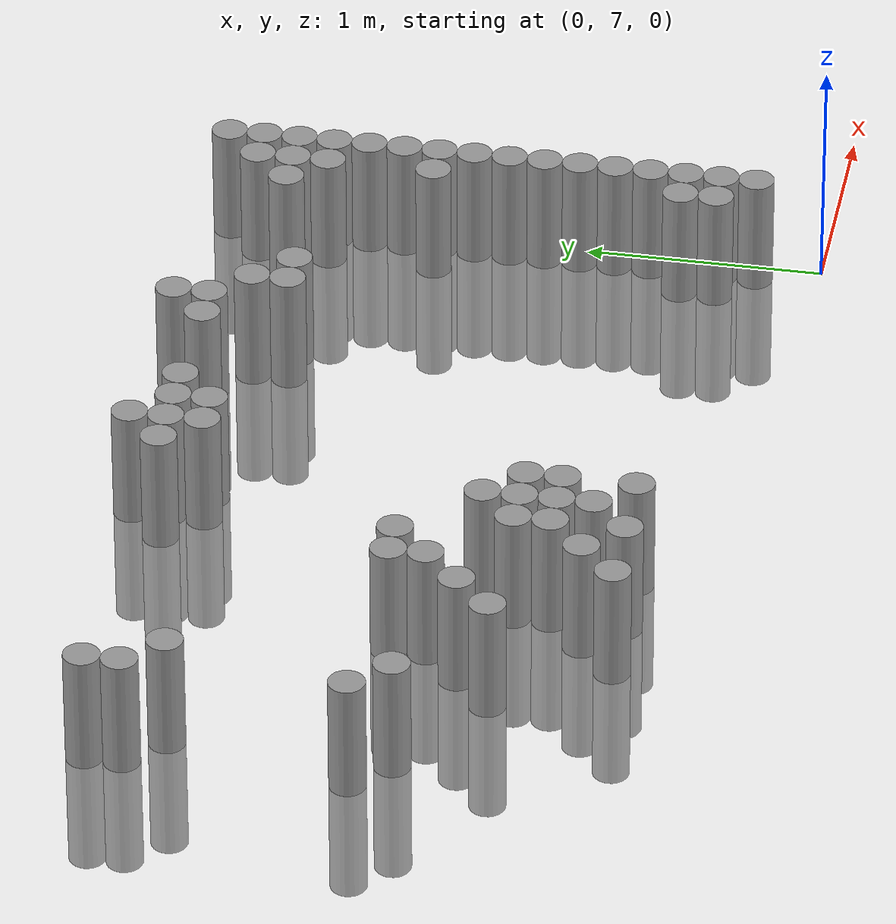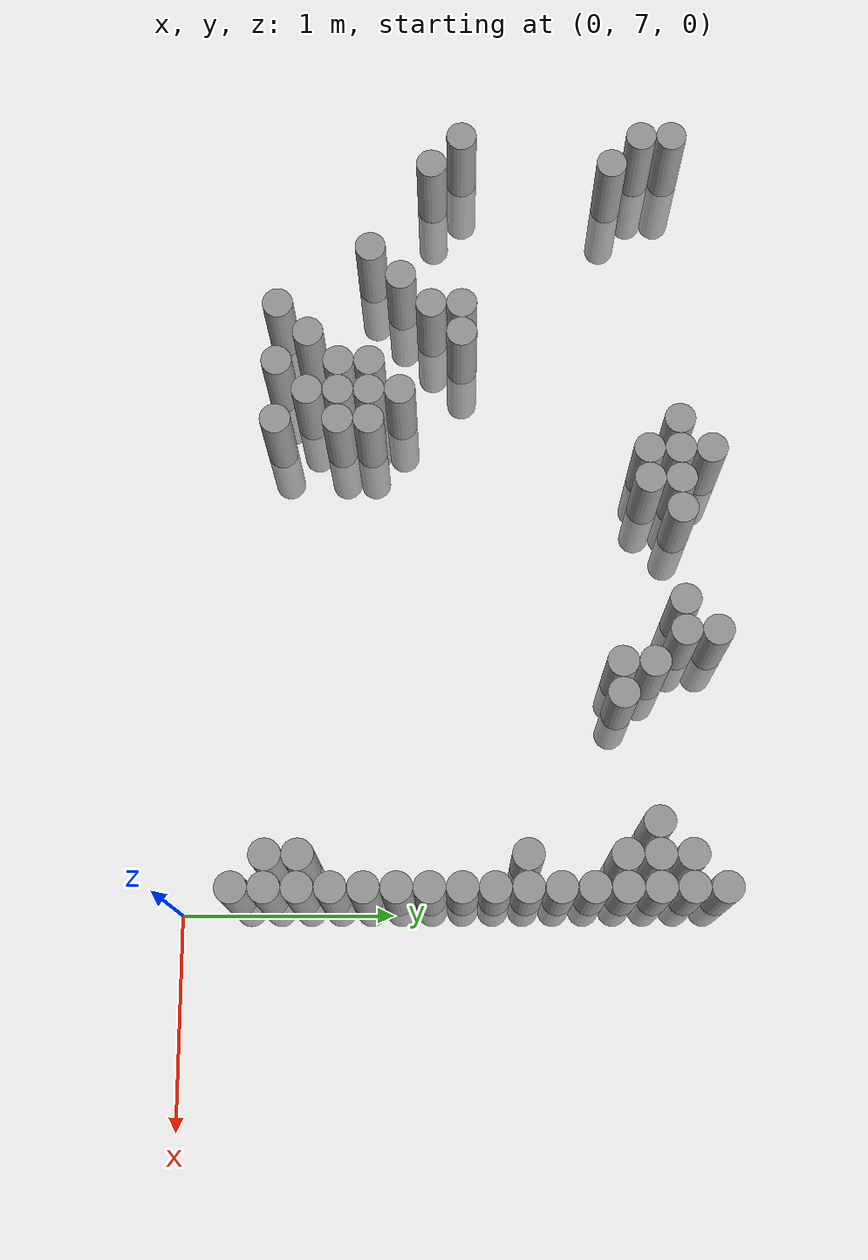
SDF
<sdf version="1.6">
 <world name="default">
  <model name="ground_plane">
   <static>1</static>
   <static>1</static>
   <link name="link">
    <collision name="collision">
     <geometry><plane><normal>0 0 1</normal><size>100 100</size></plane></geometry>
     <surface><friction><ode><mu>100</mu><mu2>50</mu2></ode></friction></surface>
    </collision>
    <visual name="visual">
     <cast_shadows>0</cast_shadows>
     <geometry><plane><normal>0 0 1</normal><size>100 100</size></plane></geometry>
     <material>
      <script><uri>file://media/materials/scripts/gazebo.material</uri><name>Gazebo/Grey</name></script>
     </material>
    </visual>
   </link>
  </model>
  <model name="unit_cylinder_160">
   <static>1</static>
   <pose>-3.825000 8.325000 0.000000 0.000000 0.000000 0.000000</pose>
   <link name="link">
    <inertial>
     <mass>1</mass>
     <inertia><ixx>0.145833</ixx><ixy>0</ixy><ixz>0</ixz><iyy>0.145833</iyy><iyz>0</iyz><izz>0.125</izz></inertia>
    </inertial>
    <collision name="collision">
     <geometry><cylinder><radius>0.075000</radius><length>1</length></cylinder></geometry>
    </collision>
    <visual name="visual">
     <geometry><cylinder><radius>0.075000</radius><length>1</length></cylinder></geometry>
     <material>
      <script><name>Gazebo/Grey</name><uri>file://media/materials/scripts/gazebo.material</uri></script>
     </material>
    </visual>
   </link>
  </model>
  <model name="unit_cylinder_161">
   <static>1</static>
   <pose>-3.825000 9.225000 0.000000 0.000000 0.000000 0.000000</pose>
   <link name="link">
    <inertial>
     <mass>1</mass>
     <inertia><ixx>0.145833</ixx><ixy>0</ixy><ixz>0</ixz><iyy>0.145833</iyy><iyz>0</iyz><izz>0.125</izz></inertia>
    </inertial>
    <collision name="collision">
     <geometry><cylinder><radius>0.075000</radius><length>1</length></cylinder></geometry>
    </collision>
    <visual name="visual">
     <geometry><cylinder><radius>0.075000</radius><length>1</length></cylinder></geometry>
     <material>
      <script><name>Gazebo/Grey</name><uri>file://media/materials/scripts/gazebo.material</uri></script>
     </material>
    </visual>
   </link>
  </model>
  <model name="unit_cylinder_162">
   <static>1</static>
   <pose>-3.825000 9.375000 0.000000 0.000000 0.000000 0.000000</pose>
   <link name="link">
    <inertial>
     <mass>1</mass>
     <inertia><ixx>0.145833</ixx><ixy>0</ixy><ixz>0</ixz><iyy>0.145833</iyy><iyz>0</iyz><izz>0.125</izz></inertia>
    </inertial>
    <collision name="collision">
     <geometry><cylinder><radius>0.075000</radius><length>1</length></cylinder></geometry>
    </collision>
    <visual name="visual">
     <geometry><cylinder><radius>0.075000</radius><length>1</length></cylinder></geometry>
     <material>
      <script><name>Gazebo/Grey</name><uri>file://media/materials/scripts/gazebo.material</uri></script>
     </material>
    </visual>
   </link>
  </model>
  <model name="unit_cylinder_164">
   <static>1</static>
   <pose>-3.675000 8.175000 0.000000 0.000000 0.000000 0.000000</pose>
   <link name="link">
    <inertial>
     <mass>1</mass>
     <inertia><ixx>0.145833</ixx><ixy>0</ixy><ixz>0</ixz><iyy>0.145833</iyy><iyz>0</iyz><izz>0.125</izz></inertia>
    </inertial>
    <collision name="collision">
     <geometry><cylinder><radius>0.075000</radius><length>1</length></cylinder></geometry>
    </collision>
    <visual name="visual">
     <geometry><cylinder><radius>0.075000</radius><length>1</length></cylinder></geometry>
     <material>
      <script><name>Gazebo/Grey</name><uri>file://media/materials/scripts/gazebo.material</uri></script>
     </material>
    </visual>
   </link>
  </model>
  <model name="unit_cylinder_165">
   <static>1</static>
   <pose>-3.675000 9.075000 0.000000 0.000000 0.000000 0.000000</pose>
   <link name="link">
    <inertial>
     <mass>1</mass>
     <inertia><ixx>0.145833</ixx><ixy>0</ixy><ixz>0</ixz><iyy>0.145833</iyy><iyz>0</iyz><izz>0.125</izz></inertia>
    </inertial>
    <collision name="collision">
     <geometry><cylinder><radius>0.075000</radius><length>1</length></cylinder></geometry>
    </collision>
    <visual name="visual">
     <geometry><cylinder><radius>0.075000</radius><length>1</length></cylinder></geometry>
     <material>
      <script><name>Gazebo/Grey</name><uri>file://media/materials/scripts/gazebo.material</uri></script>
     </material>
    </visual>
   </link>
  </model>
  <model name="unit_cylinder_174">
   <static>1</static>
   <pose>-3.225000 7.875000 0.000000 0.000000 0.000000 0.000000</pose>
   <link name="link">
    <inertial>
     <mass>1</mass>
     <inertia><ixx>0.145833</ixx><ixy>0</ixy><ixz>0</ixz><iyy>0.145833</iyy><iyz>0</iyz><izz>0.125</izz></inertia>
    </inertial>
    <collision name="collision">
     <geometry><cylinder><radius>0.075000</radius><length>1</length></cylinder></geometry>
    </collision>
    <visual name="visual">
     <geometry><cylinder><radius>0.075000</radius><length>1</length></cylinder></geometry>
     <material>
      <script><name>Gazebo/Grey</name><uri>file://media/materials/scripts/gazebo.material</uri></script>
     </material>
    </visual>
   </link>
  </model>
  <model name="unit_cylinder_180">
   <static>1</static>
   <pose>-3.075000 8.025000 0.000000 0.000000 0.000000 0.000000</pose>
   <link name="link">
    <inertial>
     <mass>1</mass>
     <inertia><ixx>0.145833</ixx><ixy>0</ixy><ixz>0</ixz><iyy>0.145833</iyy><iyz>0</iyz><izz>0.125</izz></inertia>
    </inertial>
    <collision name="collision">
     <geometry><cylinder><radius>0.075000</radius><length>1</length></cylinder></geometry>
    </collision>
    <visual name="visual">
     <geometry><cylinder><radius>0.075000</radius><length>1</length></cylinder></geometry>
     <material>
      <script><name>Gazebo/Grey</name><uri>file://media/materials/scripts/gazebo.material</uri></script>
     </material>
    </visual>
   </link>
  </model>
  <model name="unit_cylinder_183">
   <static>1</static>
   <pose>-2.925000 7.425000 0.000000 0.000000 0.000000 0.000000</pose>
   <link name="link">
    <inertial>
     <mass>1</mass>
     <inertia><ixx>0.145833</ixx><ixy>0</ixy><ixz>0</ixz><iyy>0.145833</iyy><iyz>0</iyz><izz>0.125</izz></inertia>
    </inertial>
    <collision name="collision">
     <geometry><cylinder><radius>0.075000</radius><length>1</length></cylinder></geometry>
    </collision>
    <visual name="visual">
     <geometry><cylinder><radius>0.075000</radius><length>1</length></cylinder></geometry>
     <material>
      <script><name>Gazebo/Grey</name><uri>file://media/materials/scripts/gazebo.material</uri></script>
     </material>
    </visual>
   </link>
  </model>
  <model name="unit_cylinder_184">
   <static>1</static>
   <pose>-2.925000 8.175000 0.000000 0.000000 0.000000 0.000000</pose>
   <link name="link">
    <inertial>
     <mass>1</mass>
     <inertia><ixx>0.145833</ixx><ixy>0</ixy><ixz>0</ixz><iyy>0.145833</iyy><iyz>0</iyz><izz>0.125</izz></inertia>
    </inertial>
    <collision name="collision">
     <geometry><cylinder><radius>0.075000</radius><length>1</length></cylinder></geometry>
    </collision>
    <visual name="visual">
     <geometry><cylinder><radius>0.075000</radius><length>1</length></cylinder></geometry>
     <material>
      <script><name>Gazebo/Grey</name><uri>file://media/materials/scripts/gazebo.material</uri></script>
     </material>
    </visual>
   </link>
  </model>
  <model name="unit_cylinder_185">
   <static>1</static>
   <pose>-2.925000 8.325000 0.000000 0.000000 0.000000 0.000000</pose>
   <link name="link">
    <inertial>
     <mass>1</mass>
     <inertia><ixx>0.145833</ixx><ixy>0</ixy><ixz>0</ixz><iyy>0.145833</iyy><iyz>0</iyz><izz>0.125</izz></inertia>
    </inertial>
    <collision name="collision">
     <geometry><cylinder><radius>0.075000</radius><length>1</length></cylinder></geometry>
    </collision>
    <visual name="visual">
     <geometry><cylinder><radius>0.075000</radius><length>1</length></cylinder></geometry>
     <material>
      <script><name>Gazebo/Grey</name><uri>file://media/materials/scripts/gazebo.material</uri></script>
     </material>
    </visual>
   </link>
  </model>
  <model name="unit_cylinder_188">
   <static>1</static>
   <pose>-2.775000 7.575000 0.000000 0.000000 0.000000 0.000000</pose>
   <link name="link">
    <inertial>
     <mass>1</mass>
     <inertia><ixx>0.145833</ixx><ixy>0</ixy><ixz>0</ixz><iyy>0.145833</iyy><iyz>0</iyz><izz>0.125</izz></inertia>
    </inertial>
    <collision name="collision">
     <geometry><cylinder><radius>0.075000</radius><length>1</length></cylinder></geometry>
    </collision>
    <visual name="visual">
     <geometry><cylinder><radius>0.075000</radius><length>1</length></cylinder></geometry>
     <material>
      <script><name>Gazebo/Grey</name><uri>file://media/materials/scripts/gazebo.material</uri></script>
     </material>
    </visual>
   </link>
  </model>
  <model name="unit_cylinder_189">
   <static>1</static>
   <pose>-2.775000 8.325000 0.000000 0.000000 0.000000 0.000000</pose>
   <link name="link">
    <inertial>
     <mass>1</mass>
     <inertia><ixx>0.145833</ixx><ixy>0</ixy><ixz>0</ixz><iyy>0.145833</iyy><iyz>0</iyz><izz>0.125</izz></inertia>
    </inertial>
    <collision name="collision">
     <geometry><cylinder><radius>0.075000</radius><length>1</length></cylinder></geometry>
    </collision>
    <visual name="visual">
     <geometry><cylinder><radius>0.075000</radius><length>1</length></cylinder></geometry>
     <material>
      <script><name>Gazebo/Grey</name><uri>file://media/materials/scripts/gazebo.material</uri></script>
     </material>
    </visual>
   </link>
  </model>
  <model name="unit_cylinder_193">
   <static>1</static>
   <pose>-2.625000 7.425000 0.000000 0.000000 0.000000 0.000000</pose>
   <link name="link">
    <inertial>
     <mass>1</mass>
     <inertia><ixx>0.145833</ixx><ixy>0</ixy><ixz>0</ixz><iyy>0.145833</iyy><iyz>0</iyz><izz>0.125</izz></inertia>
    </inertial>
    <collision name="collision">
     <geometry><cylinder><radius>0.075000</radius><length>1</length></cylinder></geometry>
    </collision>
    <visual name="visual">
     <geometry><cylinder><radius>0.075000</radius><length>1</length></cylinder></geometry>
     <material>
      <script><name>Gazebo/Grey</name><uri>file://media/materials/scripts/gazebo.material</uri></script>
     </material>
    </visual>
   </link>
  </model>
  <model name="unit_cylinder_194">
   <static>1</static>
   <pose>-2.625000 7.725000 0.000000 0.000000 0.000000 0.000000</pose>
   <link name="link">
    <inertial>
     <mass>1</mass>
     <inertia><ixx>0.145833</ixx><ixy>0</ixy><ixz>0</ixz><iyy>0.145833</iyy><iyz>0</iyz><izz>0.125</izz></inertia>
    </inertial>
    <collision name="collision">
     <geometry><cylinder><radius>0.075000</radius><length>1</length></cylinder></geometry>
    </collision>
    <visual name="visual">
     <geometry><cylinder><radius>0.075000</radius><length>1</length></cylinder></geometry>
     <material>
      <script><name>Gazebo/Grey</name><uri>file://media/materials/scripts/gazebo.material</uri></script>
     </material>
    </visual>
   </link>
  </model>
  <model name="unit_cylinder_195">
   <static>1</static>
   <pose>-2.625000 7.875000 0.000000 0.000000 0.000000 0.000000</pose>
   <link name="link">
    <inertial>
     <mass>1</mass>
     <inertia><ixx>0.145833</ixx><ixy>0</ixy><ixz>0</ixz><iyy>0.145833</iyy><iyz>0</iyz><izz>0.125</izz></inertia>
    </inertial>
    <collision name="collision">
     <geometry><cylinder><radius>0.075000</radius><length>1</length></cylinder></geometry>
    </collision>
    <visual name="visual">
     <geometry><cylinder><radius>0.075000</radius><length>1</length></cylinder></geometry>
     <material>
      <script><name>Gazebo/Grey</name><uri>file://media/materials/scripts/gazebo.material</uri></script>
     </material>
    </visual>
   </link>
  </model>
  <model name="unit_cylinder_200">
   <static>1</static>
   <pose>-2.475000 7.575000 0.000000 0.000000 0.000000 0.000000</pose>
   <link name="link">
    <inertial>
     <mass>1</mass>
     <inertia><ixx>0.145833</ixx><ixy>0</ixy><ixz>0</ixz><iyy>0.145833</iyy><iyz>0</iyz><izz>0.125</izz></inertia>
    </inertial>
    <collision name="collision">
     <geometry><cylinder><radius>0.075000</radius><length>1</length></cylinder></geometry>
    </collision>
    <visual name="visual">
     <geometry><cylinder><radius>0.075000</radius><length>1</length></cylinder></geometry>
     <material>
      <script><name>Gazebo/Grey</name><uri>file://media/materials/scripts/gazebo.material</uri></script>
     </material>
    </visual>
   </link>
  </model>
  <model name="unit_cylinder_201">
   <static>1</static>
   <pose>-2.475000 7.725000 0.000000 0.000000 0.000000 0.000000</pose>
   <link name="link">
    <inertial>
     <mass>1</mass>
     <inertia><ixx>0.145833</ixx><ixy>0</ixy><ixz>0</ixz><iyy>0.145833</iyy><iyz>0</iyz><izz>0.125</izz></inertia>
    </inertial>
    <collision name="collision">
     <geometry><cylinder><radius>0.075000</radius><length>1</length></cylinder></geometry>
    </collision>
    <visual name="visual">
     <geometry><cylinder><radius>0.075000</radius><length>1</length></cylinder></geometry>
     <material>
      <script><name>Gazebo/Grey</name><uri>file://media/materials/scripts/gazebo.material</uri></script>
     </material>
    </visual>
   </link>
  </model>
  <model name="unit_cylinder_202">
   <static>1</static>
   <pose>-2.475000 7.875000 0.000000 0.000000 0.000000 0.000000</pose>
   <link name="link">
    <inertial>
     <mass>1</mass>
     <inertia><ixx>0.145833</ixx><ixy>0</ixy><ixz>0</ixz><iyy>0.145833</iyy><iyz>0</iyz><izz>0.125</izz></inertia>
    </inertial>
    <collision name="collision">
     <geometry><cylinder><radius>0.075000</radius><length>1</length></cylinder></geometry>
    </collision>
    <visual name="visual">
     <geometry><cylinder><radius>0.075000</radius><length>1</length></cylinder></geometry>
     <material>
      <script><name>Gazebo/Grey</name><uri>file://media/materials/scripts/gazebo.material</uri></script>
     </material>
    </visual>
   </link>
  </model>
  <model name="unit_cylinder_203">
   <static>1</static>
   <pose>-2.475000 8.025000 0.000000 0.000000 0.000000 0.000000</pose>
   <link name="link">
    <inertial>
     <mass>1</mass>
     <inertia><ixx>0.145833</ixx><ixy>0</ixy><ixz>0</ixz><iyy>0.145833</iyy><iyz>0</iyz><izz>0.125</izz></inertia>
    </inertial>
    <collision name="collision">
     <geometry><cylinder><radius>0.075000</radius><length>1</length></cylinder></geometry>
    </collision>
    <visual name="visual">
     <geometry><cylinder><radius>0.075000</radius><length>1</length></cylinder></geometry>
     <material>
      <script><name>Gazebo/Grey</name><uri>file://media/materials/scripts/gazebo.material</uri></script>
     </material>
    </visual>
   </link>
  </model>
  <model name="unit_cylinder_208">
   <static>1</static>
   <pose>-2.325000 7.425000 0.000000 0.000000 0.000000 0.000000</pose>
   <link name="link">
    <inertial>
     <mass>1</mass>
     <inertia><ixx>0.145833</ixx><ixy>0</ixy><ixz>0</ixz><iyy>0.145833</iyy><iyz>0</iyz><izz>0.125</izz></inertia>
    </inertial>
    <collision name="collision">
     <geometry><cylinder><radius>0.075000</radius><length>1</length></cylinder></geometry>
    </collision>
    <visual name="visual">
     <geometry><cylinder><radius>0.075000</radius><length>1</length></cylinder></geometry>
     <material>
      <script><name>Gazebo/Grey</name><uri>file://media/materials/scripts/gazebo.material</uri></script>
     </material>
    </visual>
   </link>
  </model>
  <model name="unit_cylinder_209">
   <static>1</static>
   <pose>-2.325000 7.725000 0.000000 0.000000 0.000000 0.000000</pose>
   <link name="link">
    <inertial>
     <mass>1</mass>
     <inertia><ixx>0.145833</ixx><ixy>0</ixy><ixz>0</ixz><iyy>0.145833</iyy><iyz>0</iyz><izz>0.125</izz></inertia>
    </inertial>
    <collision name="collision">
     <geometry><cylinder><radius>0.075000</radius><length>1</length></cylinder></geometry>
    </collision>
    <visual name="visual">
     <geometry><cylinder><radius>0.075000</radius><length>1</length></cylinder></geometry>
     <material>
      <script><name>Gazebo/Grey</name><uri>file://media/materials/scripts/gazebo.material</uri></script>
     </material>
    </visual>
   </link>
  </model>
  <model name="unit_cylinder_210">
   <static>1</static>
   <pose>-2.325000 7.875000 0.000000 0.000000 0.000000 0.000000</pose>
   <link name="link">
    <inertial>
     <mass>1</mass>
     <inertia><ixx>0.145833</ixx><ixy>0</ixy><ixz>0</ixz><iyy>0.145833</iyy><iyz>0</iyz><izz>0.125</izz></inertia>
    </inertial>
    <collision name="collision">
     <geometry><cylinder><radius>0.075000</radius><length>1</length></cylinder></geometry>
    </collision>
    <visual name="visual">
     <geometry><cylinder><radius>0.075000</radius><length>1</length></cylinder></geometry>
     <material>
      <script><name>Gazebo/Grey</name><uri>file://media/materials/scripts/gazebo.material</uri></script>
     </material>
    </visual>
   </link>
  </model>
  <model name="unit_cylinder_211">
   <static>1</static>
   <pose>-2.325000 9.375000 0.000000 0.000000 0.000000 0.000000</pose>
   <link name="link">
    <inertial>
     <mass>1</mass>
     <inertia><ixx>0.145833</ixx><ixy>0</ixy><ixz>0</ixz><iyy>0.145833</iyy><iyz>0</iyz><izz>0.125</izz></inertia>
    </inertial>
    <collision name="collision">
     <geometry><cylinder><radius>0.075000</radius><length>1</length></cylinder></geometry>
    </collision>
    <visual name="visual">
     <geometry><cylinder><radius>0.075000</radius><length>1</length></cylinder></geometry>
     <material>
      <script><name>Gazebo/Grey</name><uri>file://media/materials/scripts/gazebo.material</uri></script>
     </material>
    </visual>
   </link>
  </model>
  <model name="unit_cylinder_212">
   <static>1</static>
   <pose>-2.175000 9.225000 0.000000 0.000000 0.000000 0.000000</pose>
   <link name="link">
    <inertial>
     <mass>1</mass>
     <inertia><ixx>0.145833</ixx><ixy>0</ixy><ixz>0</ixz><iyy>0.145833</iyy><iyz>0</iyz><izz>0.125</izz></inertia>
    </inertial>
    <collision name="collision">
     <geometry><cylinder><radius>0.075000</radius><length>1</length></cylinder></geometry>
    </collision>
    <visual name="visual">
     <geometry><cylinder><radius>0.075000</radius><length>1</length></cylinder></geometry>
     <material>
      <script><name>Gazebo/Grey</name><uri>file://media/materials/scripts/gazebo.material</uri></script>
     </material>
    </visual>
   </link>
  </model>
  <model name="unit_cylinder_213">
   <static>1</static>
   <pose>-2.175000 9.375000 0.000000 0.000000 0.000000 0.000000</pose>
   <link name="link">
    <inertial>
     <mass>1</mass>
     <inertia><ixx>0.145833</ixx><ixy>0</ixy><ixz>0</ixz><iyy>0.145833</iyy><iyz>0</iyz><izz>0.125</izz></inertia>
    </inertial>
    <collision name="collision">
     <geometry><cylinder><radius>0.075000</radius><length>1</length></cylinder></geometry>
    </collision>
    <visual name="visual">
     <geometry><cylinder><radius>0.075000</radius><length>1</length></cylinder></geometry>
     <material>
      <script><name>Gazebo/Grey</name><uri>file://media/materials/scripts/gazebo.material</uri></script>
     </material>
    </visual>
   </link>
  </model>
  <model name="unit_cylinder_214">
   <static>1</static>
   <pose>-2.175000 9.525000 0.000000 0.000000 0.000000 0.000000</pose>
   <link name="link">
    <inertial>
     <mass>1</mass>
     <inertia><ixx>0.145833</ixx><ixy>0</ixy><ixz>0</ixz><iyy>0.145833</iyy><iyz>0</iyz><izz>0.125</izz></inertia>
    </inertial>
    <collision name="collision">
     <geometry><cylinder><radius>0.075000</radius><length>1</length></cylinder></geometry>
    </collision>
    <visual name="visual">
     <geometry><cylinder><radius>0.075000</radius><length>1</length></cylinder></geometry>
     <material>
      <script><name>Gazebo/Grey</name><uri>file://media/materials/scripts/gazebo.material</uri></script>
     </material>
    </visual>
   </link>
  </model>
  <model name="unit_cylinder_215">
   <static>1</static>
   <pose>-2.025000 9.225000 0.000000 0.000000 0.000000 0.000000</pose>
   <link name="link">
    <inertial>
     <mass>1</mass>
     <inertia><ixx>0.145833</ixx><ixy>0</ixy><ixz>0</ixz><iyy>0.145833</iyy><iyz>0</iyz><izz>0.125</izz></inertia>
    </inertial>
    <collision name="collision">
     <geometry><cylinder><radius>0.075000</radius><length>1</length></cylinder></geometry>
    </collision>
    <visual name="visual">
     <geometry><cylinder><radius>0.075000</radius><length>1</length></cylinder></geometry>
     <material>
      <script><name>Gazebo/Grey</name><uri>file://media/materials/scripts/gazebo.material</uri></script>
     </material>
    </visual>
   </link>
  </model>
  <model name="unit_cylinder_216">
   <static>1</static>
   <pose>-2.025000 9.375000 0.000000 0.000000 0.000000 0.000000</pose>
   <link name="link">
    <inertial>
     <mass>1</mass>
     <inertia><ixx>0.145833</ixx><ixy>0</ixy><ixz>0</ixz><iyy>0.145833</iyy><iyz>0</iyz><izz>0.125</izz></inertia>
    </inertial>
    <collision name="collision">
     <geometry><cylinder><radius>0.075000</radius><length>1</length></cylinder></geometry>
    </collision>
    <visual name="visual">
     <geometry><cylinder><radius>0.075000</radius><length>1</length></cylinder></geometry>
     <material>
      <script><name>Gazebo/Grey</name><uri>file://media/materials/scripts/gazebo.material</uri></script>
     </material>
    </visual>
   </link>
  </model>
  <model name="unit_cylinder_217">
   <static>1</static>
   <pose>-1.875000 9.375000 0.000000 0.000000 0.000000 0.000000</pose>
   <link name="link">
    <inertial>
     <mass>1</mass>
     <inertia><ixx>0.145833</ixx><ixy>0</ixy><ixz>0</ixz><iyy>0.145833</iyy><iyz>0</iyz><izz>0.125</izz></inertia>
    </inertial>
    <collision name="collision">
     <geometry><cylinder><radius>0.075000</radius><length>1</length></cylinder></geometry>
    </collision>
    <visual name="visual">
     <geometry><cylinder><radius>0.075000</radius><length>1</length></cylinder></geometry>
     <material>
      <script><name>Gazebo/Grey</name><uri>file://media/materials/scripts/gazebo.material</uri></script>
     </material>
    </visual>
   </link>
  </model>
  <model name="unit_cylinder_218">
   <static>1</static>
   <pose>-1.425000 9.375000 0.000000 0.000000 0.000000 0.000000</pose>
   <link name="link">
    <inertial>
     <mass>1</mass>
     <inertia><ixx>0.145833</ixx><ixy>0</ixy><ixz>0</ixz><iyy>0.145833</iyy><iyz>0</iyz><izz>0.125</izz></inertia>
    </inertial>
    <collision name="collision">
     <geometry><cylinder><radius>0.075000</radius><length>1</length></cylinder></geometry>
    </collision>
    <visual name="visual">
     <geometry><cylinder><radius>0.075000</radius><length>1</length></cylinder></geometry>
     <material>
      <script><name>Gazebo/Grey</name><uri>file://media/materials/scripts/gazebo.material</uri></script>
     </material>
    </visual>
   </link>
  </model>
  <model name="unit_cylinder_219">
   <static>1</static>
   <pose>-1.275000 9.375000 0.000000 0.000000 0.000000 0.000000</pose>
   <link name="link">
    <inertial>
     <mass>1</mass>
     <inertia><ixx>0.145833</ixx><ixy>0</ixy><ixz>0</ixz><iyy>0.145833</iyy><iyz>0</iyz><izz>0.125</izz></inertia>
    </inertial>
    <collision name="collision">
     <geometry><cylinder><radius>0.075000</radius><length>1</length></cylinder></geometry>
    </collision>
    <visual name="visual">
     <geometry><cylinder><radius>0.075000</radius><length>1</length></cylinder></geometry>
     <material>
      <script><name>Gazebo/Grey</name><uri>file://media/materials/scripts/gazebo.material</uri></script>
     </material>
    </visual>
   </link>
  </model>
  <model name="unit_cylinder_220">
   <static>1</static>
   <pose>-1.275000 9.525000 0.000000 0.000000 0.000000 0.000000</pose>
   <link name="link">
    <inertial>
     <mass>1</mass>
     <inertia><ixx>0.145833</ixx><ixy>0</ixy><ixz>0</ixz><iyy>0.145833</iyy><iyz>0</iyz><izz>0.125</izz></inertia>
    </inertial>
    <collision name="collision">
     <geometry><cylinder><radius>0.075000</radius><length>1</length></cylinder></geometry>
    </collision>
    <visual name="visual">
     <geometry><cylinder><radius>0.075000</radius><length>1</length></cylinder></geometry>
     <material>
      <script><name>Gazebo/Grey</name><uri>file://media/materials/scripts/gazebo.material</uri></script>
     </material>
    </visual>
   </link>
  </model>
  <model name="unit_cylinder_221">
   <static>1</static>
   <pose>-1.125000 9.075000 0.000000 0.000000 0.000000 0.000000</pose>
   <link name="link">
    <inertial>
     <mass>1</mass>
     <inertia><ixx>0.145833</ixx><ixy>0</ixy><ixz>0</ixz><iyy>0.145833</iyy><iyz>0</iyz><izz>0.125</izz></inertia>
    </inertial>
    <collision name="collision">
     <geometry><cylinder><radius>0.075000</radius><length>1</length></cylinder></geometry>
    </collision>
    <visual name="visual">
     <geometry><cylinder><radius>0.075000</radius><length>1</length></cylinder></geometry>
     <material>
      <script><name>Gazebo/Grey</name><uri>file://media/materials/scripts/gazebo.material</uri></script>
     </material>
    </visual>
   </link>
  </model>
  <model name="unit_cylinder_222">
   <static>1</static>
   <pose>-1.125000 9.225000 0.000000 0.000000 0.000000 0.000000</pose>
   <link name="link">
    <inertial>
     <mass>1</mass>
     <inertia><ixx>0.145833</ixx><ixy>0</ixy><ixz>0</ixz><iyy>0.145833</iyy><iyz>0</iyz><izz>0.125</izz></inertia>
    </inertial>
    <collision name="collision">
     <geometry><cylinder><radius>0.075000</radius><length>1</length></cylinder></geometry>
    </collision>
    <visual name="visual">
     <geometry><cylinder><radius>0.075000</radius><length>1</length></cylinder></geometry>
     <material>
      <script><name>Gazebo/Grey</name><uri>file://media/materials/scripts/gazebo.material</uri></script>
     </material>
    </visual>
   </link>
  </model>
  <model name="unit_cylinder_225">
   <static>1</static>
   <pose>-0.975000 9.075000 0.000000 0.000000 0.000000 0.000000</pose>
   <link name="link">
    <inertial>
     <mass>1</mass>
     <inertia><ixx>0.145833</ixx><ixy>0</ixy><ixz>0</ixz><iyy>0.145833</iyy><iyz>0</iyz><izz>0.125</izz></inertia>
    </inertial>
    <collision name="collision">
     <geometry><cylinder><radius>0.075000</radius><length>1</length></cylinder></geometry>
    </collision>
    <visual name="visual">
     <geometry><cylinder><radius>0.075000</radius><length>1</length></cylinder></geometry>
     <material>
      <script><name>Gazebo/Grey</name><uri>file://media/materials/scripts/gazebo.material</uri></script>
     </material>
    </visual>
   </link>
  </model>
  <model name="unit_cylinder_242">
   <static>1</static>
   <pose>-0.375000 9.225000 0.000000 0.000000 0.000000 0.000000</pose>
   <link name="link">
    <inertial>
     <mass>1</mass>
     <inertia><ixx>0.145833</ixx><ixy>0</ixy><ixz>0</ixz><iyy>0.145833</iyy><iyz>0</iyz><izz>0.125</izz></inertia>
    </inertial>
    <collision name="collision">
     <geometry><cylinder><radius>0.075000</radius><length>1</length></cylinder></geometry>
    </collision>
    <visual name="visual">
     <geometry><cylinder><radius>0.075000</radius><length>1</length></cylinder></geometry>
     <material>
      <script><name>Gazebo/Grey</name><uri>file://media/materials/scripts/gazebo.material</uri></script>
     </material>
    </visual>
   </link>
  </model>
  <model name="unit_cylinder_254">
   <static>1</static>
   <pose>-0.225000 7.425000 0.000000 0.000000 0.000000 0.000000</pose>
   <link name="link">
    <inertial>
     <mass>1</mass>
     <inertia><ixx>0.145833</ixx><ixy>0</ixy><ixz>0</ixz><iyy>0.145833</iyy><iyz>0</iyz><izz>0.125</izz></inertia>
    </inertial>
    <collision name="collision">
     <geometry><cylinder><radius>0.075000</radius><length>1</length></cylinder></geometry>
    </collision>
    <visual name="visual">
     <geometry><cylinder><radius>0.075000</radius><length>1</length></cylinder></geometry>
     <material>
      <script><name>Gazebo/Grey</name><uri>file://media/materials/scripts/gazebo.material</uri></script>
     </material>
    </visual>
   </link>
  </model>
  <model name="unit_cylinder_255">
   <static>1</static>
   <pose>-0.225000 7.575000 0.000000 0.000000 0.000000 0.000000</pose>
   <link name="link">
    <inertial>
     <mass>1</mass>
     <inertia><ixx>0.145833</ixx><ixy>0</ixy><ixz>0</ixz><iyy>0.145833</iyy><iyz>0</iyz><izz>0.125</izz></inertia>
    </inertial>
    <collision name="collision">
     <geometry><cylinder><radius>0.075000</radius><length>1</length></cylinder></geometry>
    </collision>
    <visual name="visual">
     <geometry><cylinder><radius>0.075000</radius><length>1</length></cylinder></geometry>
     <material>
      <script><name>Gazebo/Grey</name><uri>file://media/materials/scripts/gazebo.material</uri></script>
     </material>
    </visual>
   </link>
  </model>
  <model name="unit_cylinder_256">
   <static>1</static>
   <pose>-0.225000 8.625000 0.000000 0.000000 0.000000 0.000000</pose>
   <link name="link">
    <inertial>
     <mass>1</mass>
     <inertia><ixx>0.145833</ixx><ixy>0</ixy><ixz>0</ixz><iyy>0.145833</iyy><iyz>0</iyz><izz>0.125</izz></inertia>
    </inertial>
    <collision name="collision">
     <geometry><cylinder><radius>0.075000</radius><length>1</length></cylinder></geometry>
    </collision>
    <visual name="visual">
     <geometry><cylinder><radius>0.075000</radius><length>1</length></cylinder></geometry>
     <material>
      <script><name>Gazebo/Grey</name><uri>file://media/materials/scripts/gazebo.material</uri></script>
     </material>
    </visual>
   </link>
  </model>
  <model name="unit_cylinder_257">
   <static>1</static>
   <pose>-0.225000 9.075000 0.000000 0.000000 0.000000 0.000000</pose>
   <link name="link">
    <inertial>
     <mass>1</mass>
     <inertia><ixx>0.145833</ixx><ixy>0</ixy><ixz>0</ixz><iyy>0.145833</iyy><iyz>0</iyz><izz>0.125</izz></inertia>
    </inertial>
    <collision name="collision">
     <geometry><cylinder><radius>0.075000</radius><length>1</length></cylinder></geometry>
    </collision>
    <visual name="visual">
     <geometry><cylinder><radius>0.075000</radius><length>1</length></cylinder></geometry>
     <material>
      <script><name>Gazebo/Grey</name><uri>file://media/materials/scripts/gazebo.material</uri></script>
     </material>
    </visual>
   </link>
  </model>
  <model name="unit_cylinder_258">
   <static>1</static>
   <pose>-0.225000 9.225000 0.000000 0.000000 0.000000 0.000000</pose>
   <link name="link">
    <inertial>
     <mass>1</mass>
     <inertia><ixx>0.145833</ixx><ixy>0</ixy><ixz>0</ixz><iyy>0.145833</iyy><iyz>0</iyz><izz>0.125</izz></inertia>
    </inertial>
    <collision name="collision">
     <geometry><cylinder><radius>0.075000</radius><length>1</length></cylinder></geometry>
    </collision>
    <visual name="visual">
     <geometry><cylinder><radius>0.075000</radius><length>1</length></cylinder></geometry>
     <material>
      <script><name>Gazebo/Grey</name><uri>file://media/materials/scripts/gazebo.material</uri></script>
     </material>
    </visual>
   </link>
  </model>
  <model name="unit_cylinder_259">
   <static>1</static>
   <pose>-0.225000 9.375000 0.000000 0.000000 0.000000 0.000000</pose>
   <link name="link">
    <inertial>
     <mass>1</mass>
     <inertia><ixx>0.145833</ixx><ixy>0</ixy><ixz>0</ixz><iyy>0.145833</iyy><iyz>0</iyz><izz>0.125</izz></inertia>
    </inertial>
    <collision name="collision">
     <geometry><cylinder><radius>0.075000</radius><length>1</length></cylinder></geometry>
    </collision>
    <visual name="visual">
     <geometry><cylinder><radius>0.075000</radius><length>1</length></cylinder></geometry>
     <material>
      <script><name>Gazebo/Grey</name><uri>file://media/materials/scripts/gazebo.material</uri></script>
     </material>
    </visual>
   </link>
  </model>
  <model name="unit_cylinder_274">
   <static>1</static>
   <pose>-0.075000 7.275000 0.000000 0.000000 0.000000 0.000000</pose>
   <link name="link">
    <inertial>
     <mass>1</mass>
     <inertia><ixx>0.145833</ixx><ixy>0</ixy><ixz>0</ixz><iyy>0.145833</iyy><iyz>0</iyz><izz>0.125</izz></inertia>
    </inertial>
    <collision name="collision">
     <geometry><cylinder><radius>0.075000</radius><length>1</length></cylinder></geometry>
    </collision>
    <visual name="visual">
     <geometry><cylinder><radius>0.075000</radius><length>1</length></cylinder></geometry>
     <material>
      <script><name>Gazebo/Grey</name><uri>file://media/materials/scripts/gazebo.material</uri></script>
     </material>
    </visual>
   </link>
  </model>
  <model name="unit_cylinder_275">
   <static>1</static>
   <pose>-0.075000 7.425000 0.000000 0.000000 0.000000 0.000000</pose>
   <link name="link">
    <inertial>
     <mass>1</mass>
     <inertia><ixx>0.145833</ixx><ixy>0</ixy><ixz>0</ixz><iyy>0.145833</iyy><iyz>0</iyz><izz>0.125</izz></inertia>
    </inertial>
    <collision name="collision">
     <geometry><cylinder><radius>0.075000</radius><length>1</length></cylinder></geometry>
    </collision>
    <visual name="visual">
     <geometry><cylinder><radius>0.075000</radius><length>1</length></cylinder></geometry>
     <material>
      <script><name>Gazebo/Grey</name><uri>file://media/materials/scripts/gazebo.material</uri></script>
     </material>
    </visual>
   </link>
  </model>
  <model name="unit_cylinder_276">
   <static>1</static>
   <pose>-0.075000 7.575000 0.000000 0.000000 0.000000 0.000000</pose>
   <link name="link">
    <inertial>
     <mass>1</mass>
     <inertia><ixx>0.145833</ixx><ixy>0</ixy><ixz>0</ixz><iyy>0.145833</iyy><iyz>0</iyz><izz>0.125</izz></inertia>
    </inertial>
    <collision name="collision">
     <geometry><cylinder><radius>0.075000</radius><length>1</length></cylinder></geometry>
    </collision>
    <visual name="visual">
     <geometry><cylinder><radius>0.075000</radius><length>1</length></cylinder></geometry>
     <material>
      <script><name>Gazebo/Grey</name><uri>file://media/materials/scripts/gazebo.material</uri></script>
     </material>
    </visual>
   </link>
  </model>
  <model name="unit_cylinder_277">
   <static>1</static>
   <pose>-0.075000 7.725000 0.000000 0.000000 0.000000 0.000000</pose>
   <link name="link">
    <inertial>
     <mass>1</mass>
     <inertia><ixx>0.145833</ixx><ixy>0</ixy><ixz>0</ixz><iyy>0.145833</iyy><iyz>0</iyz><izz>0.125</izz></inertia>
    </inertial>
    <collision name="collision">
     <geometry><cylinder><radius>0.075000</radius><length>1</length></cylinder></geometry>
    </collision>
    <visual name="visual">
     <geometry><cylinder><radius>0.075000</radius><length>1</length></cylinder></geometry>
     <material>
      <script><name>Gazebo/Grey</name><uri>file://media/materials/scripts/gazebo.material</uri></script>
     </material>
    </visual>
   </link>
  </model>
  <model name="unit_cylinder_278">
   <static>1</static>
   <pose>-0.075000 7.875000 0.000000 0.000000 0.000000 0.000000</pose>
   <link name="link">
    <inertial>
     <mass>1</mass>
     <inertia><ixx>0.145833</ixx><ixy>0</ixy><ixz>0</ixz><iyy>0.145833</iyy><iyz>0</iyz><izz>0.125</izz></inertia>
    </inertial>
    <collision name="collision">
     <geometry><cylinder><radius>0.075000</radius><length>1</length></cylinder></geometry>
    </collision>
    <visual name="visual">
     <geometry><cylinder><radius>0.075000</radius><length>1</length></cylinder></geometry>
     <material>
      <script><name>Gazebo/Grey</name><uri>file://media/materials/scripts/gazebo.material</uri></script>
     </material>
    </visual>
   </link>
  </model>
  <model name="unit_cylinder_279">
   <static>1</static>
   <pose>-0.075000 8.025000 0.000000 0.000000 0.000000 0.000000</pose>
   <link name="link">
    <inertial>
     <mass>1</mass>
     <inertia><ixx>0.145833</ixx><ixy>0</ixy><ixz>0</ixz><iyy>0.145833</iyy><iyz>0</iyz><izz>0.125</izz></inertia>
    </inertial>
    <collision name="collision">
     <geometry><cylinder><radius>0.075000</radius><length>1</length></cylinder></geometry>
    </collision>
    <visual name="visual">
     <geometry><cylinder><radius>0.075000</radius><length>1</length></cylinder></geometry>
     <material>
      <script><name>Gazebo/Grey</name><uri>file://media/materials/scripts/gazebo.material</uri></script>
     </material>
    </visual>
   </link>
  </model>
  <model name="unit_cylinder_280">
   <static>1</static>
   <pose>-0.075000 8.175000 0.000000 0.000000 0.000000 0.000000</pose>
   <link name="link">
    <inertial>
     <mass>1</mass>
     <inertia><ixx>0.145833</ixx><ixy>0</ixy><ixz>0</ixz><iyy>0.145833</iyy><iyz>0</iyz><izz>0.125</izz></inertia>
    </inertial>
    <collision name="collision">
     <geometry><cylinder><radius>0.075000</radius><length>1</length></cylinder></geometry>
    </collision>
    <visual name="visual">
     <geometry><cylinder><radius>0.075000</radius><length>1</length></cylinder></geometry>
     <material>
      <script><name>Gazebo/Grey</name><uri>file://media/materials/scripts/gazebo.material</uri></script>
     </material>
    </visual>
   </link>
  </model>
  <model name="unit_cylinder_281">
   <static>1</static>
   <pose>-0.075000 8.325000 0.000000 0.000000 0.000000 0.000000</pose>
   <link name="link">
    <inertial>
     <mass>1</mass>
     <inertia><ixx>0.145833</ixx><ixy>0</ixy><ixz>0</ixz><iyy>0.145833</iyy><iyz>0</iyz><izz>0.125</izz></inertia>
    </inertial>
    <collision name="collision">
     <geometry><cylinder><radius>0.075000</radius><length>1</length></cylinder></geometry>
    </collision>
    <visual name="visual">
     <geometry><cylinder><radius>0.075000</radius><length>1</length></cylinder></geometry>
     <material>
      <script><name>Gazebo/Grey</name><uri>file://media/materials/scripts/gazebo.material</uri></script>
     </material>
    </visual>
   </link>
  </model>
  <model name="unit_cylinder_282">
   <static>1</static>
   <pose>-0.075000 8.475000 0.000000 0.000000 0.000000 0.000000</pose>
   <link name="link">
    <inertial>
     <mass>1</mass>
     <inertia><ixx>0.145833</ixx><ixy>0</ixy><ixz>0</ixz><iyy>0.145833</iyy><iyz>0</iyz><izz>0.125</izz></inertia>
    </inertial>
    <collision name="collision">
     <geometry><cylinder><radius>0.075000</radius><length>1</length></cylinder></geometry>
    </collision>
    <visual name="visual">
     <geometry><cylinder><radius>0.075000</radius><length>1</length></cylinder></geometry>
     <material>
      <script><name>Gazebo/Grey</name><uri>file://media/materials/scripts/gazebo.material</uri></script>
     </material>
    </visual>
   </link>
  </model>
  <model name="unit_cylinder_283">
   <static>1</static>
   <pose>-0.075000 8.625000 0.000000 0.000000 0.000000 0.000000</pose>
   <link name="link">
    <inertial>
     <mass>1</mass>
     <inertia><ixx>0.145833</ixx><ixy>0</ixy><ixz>0</ixz><iyy>0.145833</iyy><iyz>0</iyz><izz>0.125</izz></inertia>
    </inertial>
    <collision name="collision">
     <geometry><cylinder><radius>0.075000</radius><length>1</length></cylinder></geometry>
    </collision>
    <visual name="visual">
     <geometry><cylinder><radius>0.075000</radius><length>1</length></cylinder></geometry>
     <material>
      <script><name>Gazebo/Grey</name><uri>file://media/materials/scripts/gazebo.material</uri></script>
     </material>
    </visual>
   </link>
  </model>
  <model name="unit_cylinder_284">
   <static>1</static>
   <pose>-0.075000 8.775000 0.000000 0.000000 0.000000 0.000000</pose>
   <link name="link">
    <inertial>
     <mass>1</mass>
     <inertia><ixx>0.145833</ixx><ixy>0</ixy><ixz>0</ixz><iyy>0.145833</iyy><iyz>0</iyz><izz>0.125</izz></inertia>
    </inertial>
    <collision name="collision">
     <geometry><cylinder><radius>0.075000</radius><length>1</length></cylinder></geometry>
    </collision>
    <visual name="visual">
     <geometry><cylinder><radius>0.075000</radius><length>1</length></cylinder></geometry>
     <material>
      <script><name>Gazebo/Grey</name><uri>file://media/materials/scripts/gazebo.material</uri></script>
     </material>
    </visual>
   </link>
  </model>
  <model name="unit_cylinder_285">
   <static>1</static>
   <pose>-0.075000 8.925000 0.000000 0.000000 0.000000 0.000000</pose>
   <link name="link">
    <inertial>
     <mass>1</mass>
     <inertia><ixx>0.145833</ixx><ixy>0</ixy><ixz>0</ixz><iyy>0.145833</iyy><iyz>0</iyz><izz>0.125</izz></inertia>
    </inertial>
    <collision name="collision">
     <geometry><cylinder><radius>0.075000</radius><length>1</length></cylinder></geometry>
    </collision>
    <visual name="visual">
     <geometry><cylinder><radius>0.075000</radius><length>1</length></cylinder></geometry>
     <material>
      <script><name>Gazebo/Grey</name><uri>file://media/materials/scripts/gazebo.material</uri></script>
     </material>
    </visual>
   </link>
  </model>
  <model name="unit_cylinder_286">
   <static>1</static>
   <pose>-0.075000 9.075000 0.000000 0.000000 0.000000 0.000000</pose>
   <link name="link">
    <inertial>
     <mass>1</mass>
     <inertia><ixx>0.145833</ixx><ixy>0</ixy><ixz>0</ixz><iyy>0.145833</iyy><iyz>0</iyz><izz>0.125</izz></inertia>
    </inertial>
    <collision name="collision">
     <geometry><cylinder><radius>0.075000</radius><length>1</length></cylinder></geometry>
    </collision>
    <visual name="visual">
     <geometry><cylinder><radius>0.075000</radius><length>1</length></cylinder></geometry>
     <material>
      <script><name>Gazebo/Grey</name><uri>file://media/materials/scripts/gazebo.material</uri></script>
     </material>
    </visual>
   </link>
  </model>
  <model name="unit_cylinder_287">
   <static>1</static>
   <pose>-0.075000 9.225000 0.000000 0.000000 0.000000 0.000000</pose>
   <link name="link">
    <inertial>
     <mass>1</mass>
     <inertia><ixx>0.145833</ixx><ixy>0</ixy><ixz>0</ixz><iyy>0.145833</iyy><iyz>0</iyz><izz>0.125</izz></inertia>
    </inertial>
    <collision name="collision">
     <geometry><cylinder><radius>0.075000</radius><length>1</length></cylinder></geometry>
    </collision>
    <visual name="visual">
     <geometry><cylinder><radius>0.075000</radius><length>1</length></cylinder></geometry>
     <material>
      <script><name>Gazebo/Grey</name><uri>file://media/materials/scripts/gazebo.material</uri></script>
     </material>
    </visual>
   </link>
  </model>
  <model name="unit_cylinder_288">
   <static>1</static>
   <pose>-0.075000 9.375000 0.000000 0.000000 0.000000 0.000000</pose>
   <link name="link">
    <inertial>
     <mass>1</mass>
     <inertia><ixx>0.145833</ixx><ixy>0</ixy><ixz>0</ixz><iyy>0.145833</iyy><iyz>0</iyz><izz>0.125</izz></inertia>
    </inertial>
    <collision name="collision">
     <geometry><cylinder><radius>0.075000</radius><length>1</length></cylinder></geometry>
    </collision>
    <visual name="visual">
     <geometry><cylinder><radius>0.075000</radius><length>1</length></cylinder></geometry>
     <material>
      <script><name>Gazebo/Grey</name><uri>file://media/materials/scripts/gazebo.material</uri></script>
     </material>
    </visual>
   </link>
  </model>
  <model name="unit_cylinder_289">
   <static>1</static>
   <pose>-0.075000 9.525000 0.000000 0.000000 0.000000 0.000000</pose>
   <link name="link">
    <inertial>
     <mass>1</mass>
     <inertia><ixx>0.145833</ixx><ixy>0</ixy><ixz>0</ixz><iyy>0.145833</iyy><iyz>0</iyz><izz>0.125</izz></inertia>
    </inertial>
    <collision name="collision">
     <geometry><cylinder><radius>0.075000</radius><length>1</length></cylinder></geometry>
    </collision>
    <visual name="visual">
     <geometry><cylinder><radius>0.075000</radius><length>1</length></cylinder></geometry>
     <material>
      <script><name>Gazebo/Grey</name><uri>file://media/materials/scripts/gazebo.material</uri></script>
     </material>
    </visual>
   </link>
  </model>
 </world>
</sdf>
